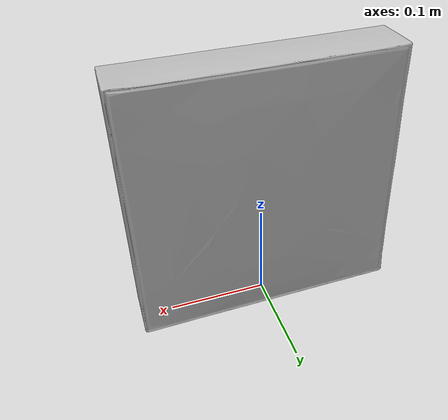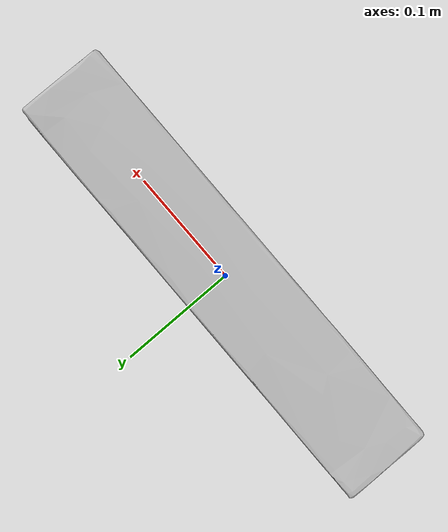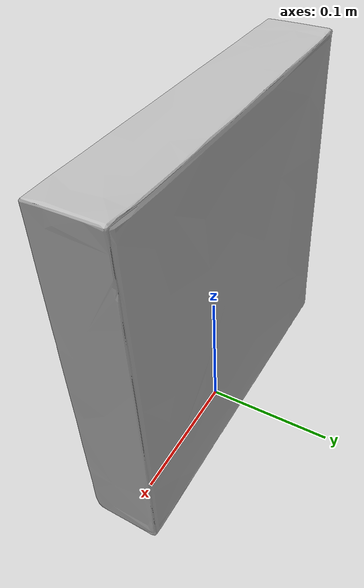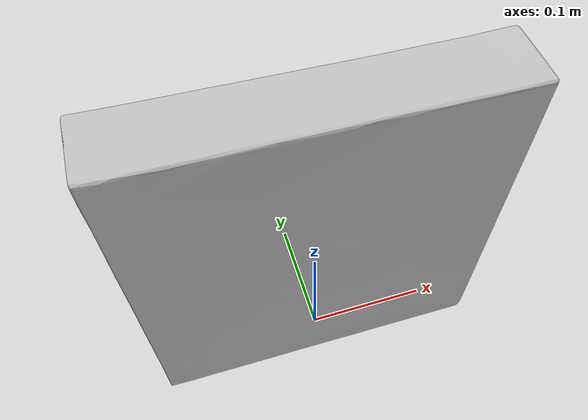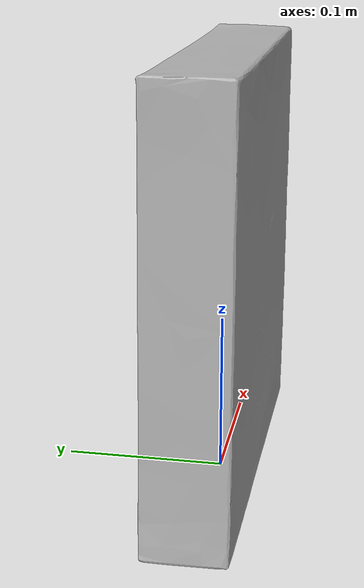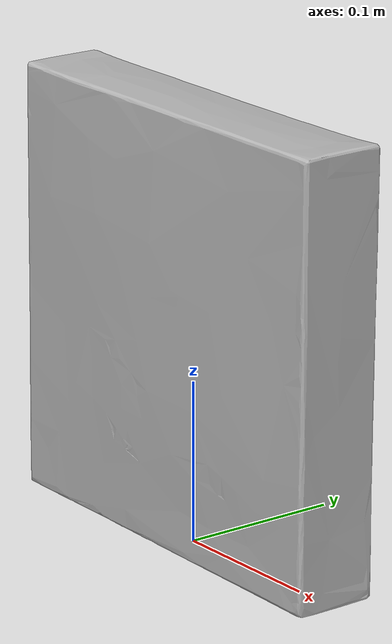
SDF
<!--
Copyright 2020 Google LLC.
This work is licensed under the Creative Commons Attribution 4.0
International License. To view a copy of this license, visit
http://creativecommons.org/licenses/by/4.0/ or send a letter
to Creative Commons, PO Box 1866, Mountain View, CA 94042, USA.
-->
<?xml version="1.0" ?>
<sdf version="1.6">
  <model name="Frozen_Scrabble_Jr">
    <link name="link_0">
      <visual name="visual">
        <geometry>
          <mesh>
            <uri>meshes/model.obj</uri>
          </mesh>
        </geometry>
      </visual>
      <collision name="collision_0">
        <geometry>
          <mesh>
            <uri>meshes/model.obj</uri>
          </mesh>
        </geometry>
      </collision>
    </link>
  </model>
</sdf>
